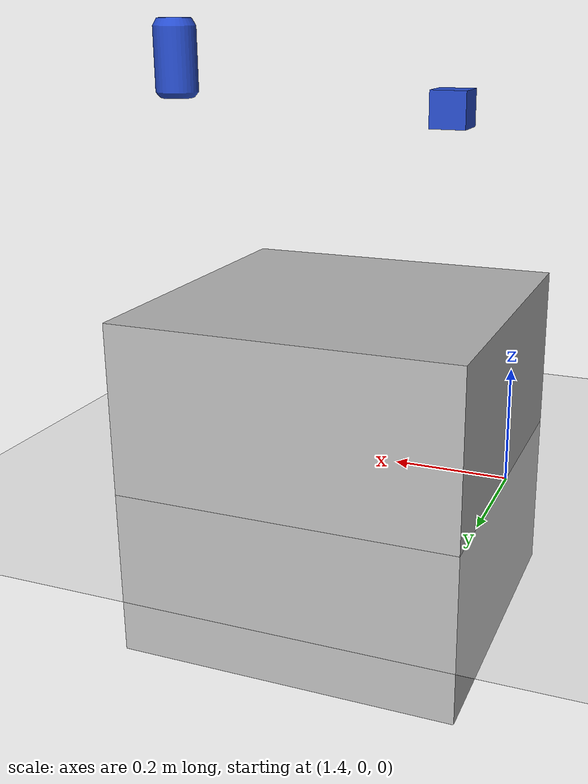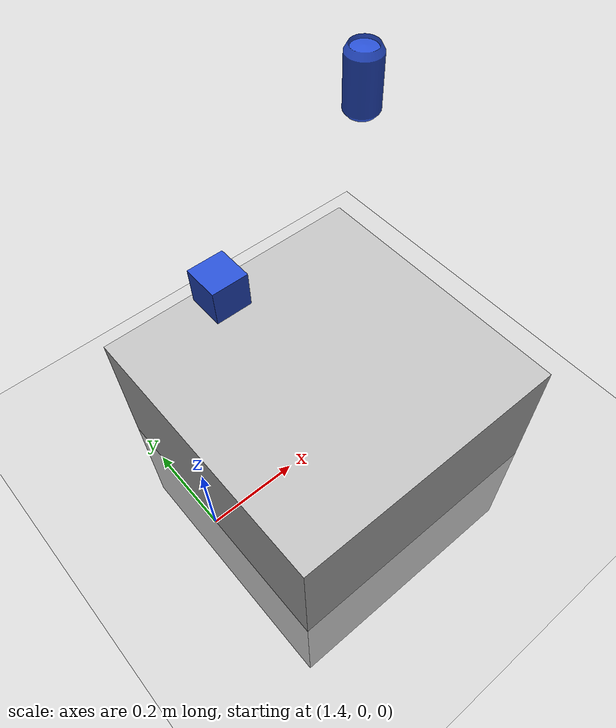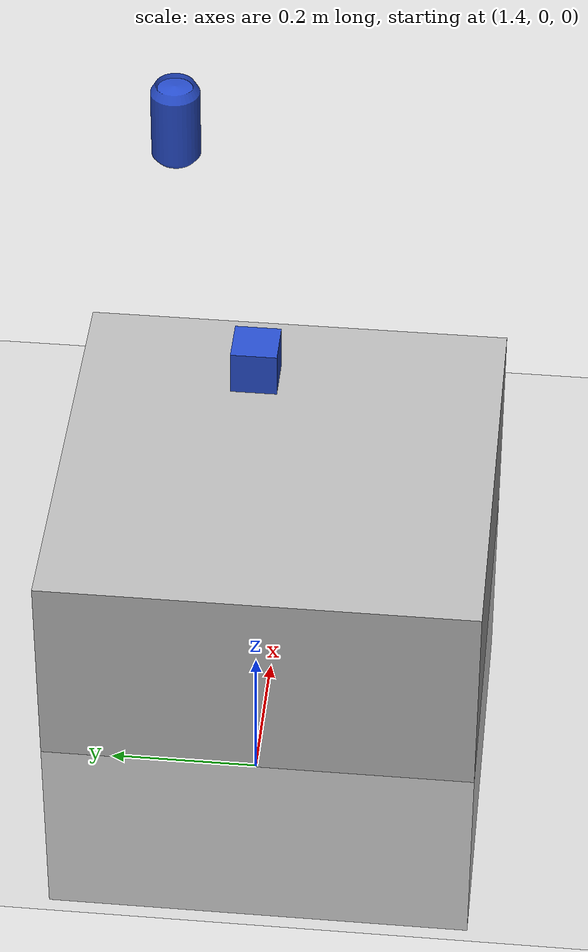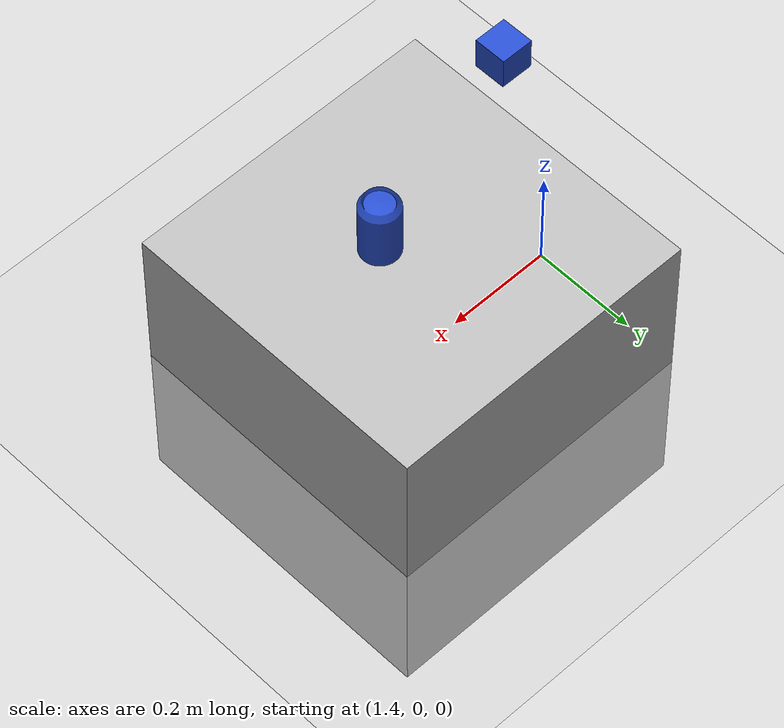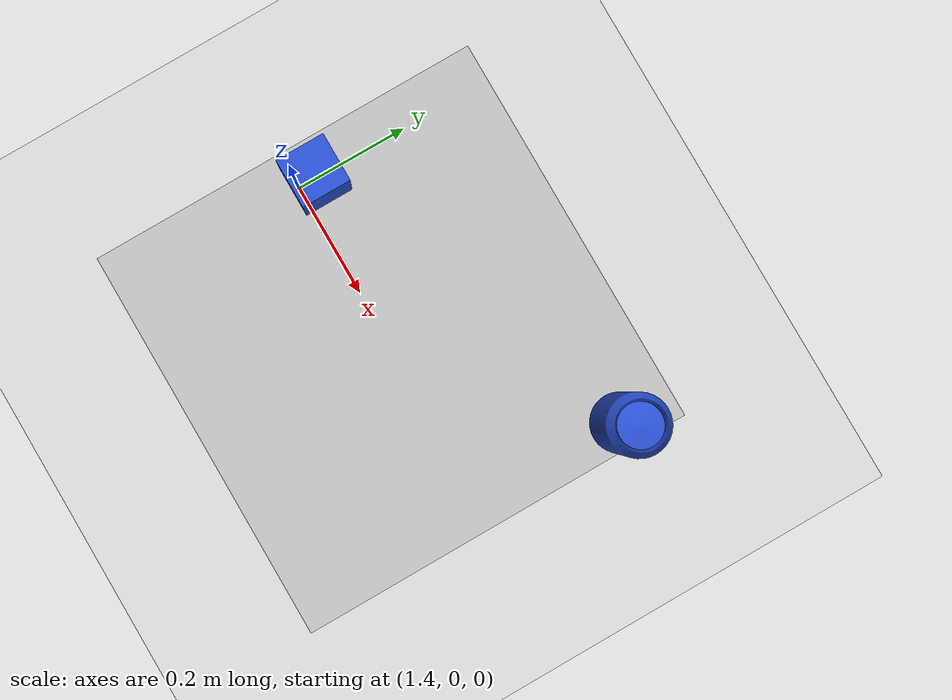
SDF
<?xml version="1.0" ?>
<sdf version="1.4">

	<world name="default">
		<include>
			<uri>model://ground_plane</uri>
		</include>

		<!-- Global light source -->
		<include>
			<uri>model://sun</uri>
		</include>

		<!-- Focus camera on tall pendulum -->

		<include>
			<uri>model://box</uri>
			<pose>1.7 0 0 0 0 0</pose>
		</include>

		<include>
			<uri>model://coke</uri>
			<pose>1.9545 0.195454 0.7 0 0 0</pose>
		</include>

		<include>
			<uri>model://demo_cube</uri>
			<pose frame=''>1.51356 0.01009 0.625995 0 0 0</pose>
		</include>
	</world>
</sdf>

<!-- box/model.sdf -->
<sdf version='1.4'>
  <model name="box">
      <static>0</static>
      <link name='link'>
        <inertial>
          <mass>1</mass>
          <inertia>
            <ixx>0.166667</ixx>
            <ixy>0</ixy>
            <ixz>0</ixz>
            <iyy>0.166667</iyy>
            <iyz>0</iyz>
            <izz>0.166667</izz>
          </inertia>
        </inertial>
        <collision name='collision'>
          <geometry>
            <box>
              <size>0.60 0.60 0.60</size>
            </box>
          </geometry>
          <surface>
            <friction>
              <ode>
                <mu>30.0</mu>
                <mu2>30.0</mu2>
              </ode>
            </friction>
            <contact>
              <ode>
                <kp>1000000.0</kp>
                <kd>100.0</kd>
                <max_vel>1.0</max_vel>
                <min_depth>0.002</min_depth>
              </ode>
            </contact>
          </surface>
        </collision>
        <visual name='visual'>
          <geometry>
            <box>
              <size>0.60 0.60 0.60</size>
            </box>
          </geometry>
          <material>
            <color rgba="0.8 0.8 0.8 1"/>
          </material>
        </visual>
        <velocity_decay>
          <linear>0.000000</linear>
          <angular>0.000000</angular>
        </velocity_decay>
        <self_collide>0</self_collide>
        <kinematic>0</kinematic>
        <gravity>1</gravity>
      </link>
  </model>
</sdf>

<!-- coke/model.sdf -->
<sdf version='1.4'>
  <model name="coke">
      <static>0</static>
      <link name='link'>
        <inertial>
          <mass>0.25</mass>
          <inertia>
            <ixx>0.001</ixx>
            <ixy>0.000000</ixy>
            <ixz>0.000000</ixz>
            <iyy>0.001</iyy>
            <iyz>0.000000</iyz>
            <izz>0.001</izz>
          </inertia>
        </inertial>
        <collision name='collision'>
          <pose>-0.033 -0.033 -0.06 0 0 0</pose>
          <geometry>
            <mesh>
              <uri>model://coke/coke.stl</uri>
            </mesh>
          </geometry>
          <surface>
            <friction>
              <ode>
                <mu>30.0</mu>
                <mu2>30.0</mu2>
              </ode>
            </friction>
            <contact>
              <ode>
                <kp>1000000.0</kp>
                <kd>100.0</kd>
                <max_vel>1.0</max_vel>
                <min_depth>0.002</min_depth>
              </ode>
            </contact>
          </surface>
        </collision>
        <visual name='visual'>
          <pose>-0.033 -0.033 -0.06 0 0 0</pose>
          <geometry>
            <mesh>
              <uri>model://coke/coke.stl</uri>
            </mesh>
          </geometry>
          <material>
            <script>
              <uri>file://media/materials/scripts/gazebo.material</uri>
              <name>Gazebo/Blue</name>
            </script>
          </material>
        </visual>
        <velocity_decay>
          <linear>0.000000</linear>
          <angular>0.000000</angular>
        </velocity_decay>
        <self_collide>0</self_collide>
        <kinematic>0</kinematic>
        <gravity>1</gravity>
      </link>
  </model>
</sdf>

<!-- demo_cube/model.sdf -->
<sdf version='1.6'>
  <model name="demo_cube">
      <static>0</static>
      <link name='link'>
        <inertial>
          <mass>0.25</mass>
          <inertia>
            <ixx>0.001</ixx>
            <ixy>0.000000</ixy>
            <ixz>0.000000</ixz>
            <iyy>0.001</iyy>
            <iyz>0.000000</iyz>
            <izz>0.001</izz>
          </inertia>
        </inertial>
        <collision name='collision'>
          <geometry>
            <box>
              <size>0.060 0.060 0.060</size>
            </box>
          </geometry>
          <surface>
            <friction>
              <ode>
                <mu>30.0</mu>
                <mu2>30.0</mu2>
              </ode>
            </friction>
            <contact>
              <ode>
                <kp>1000000.0</kp>
                <kd>100.0</kd>
                <max_vel>1.0</max_vel>
                <min_depth>0.002</min_depth>
              </ode>
            </contact>
          </surface>
        </collision>
        <visual name='visual'>
          <geometry>
            <box>
              <size>0.060 0.060 0.060</size>
            </box>
          </geometry>
          <material>
            <script>
              <uri>file://media/materials/scripts/gazebo.material</uri>
              <name>Gazebo/Blue</name>
            </script>
          </material>
        </visual>
        <velocity_decay>
          <linear>0.000000</linear>
          <angular>0.000000</angular>
        </velocity_decay>
        <self_collide>0</self_collide>
        <kinematic>0</kinematic>
        <gravity>1</gravity>
      </link>
  </model>
</sdf>
